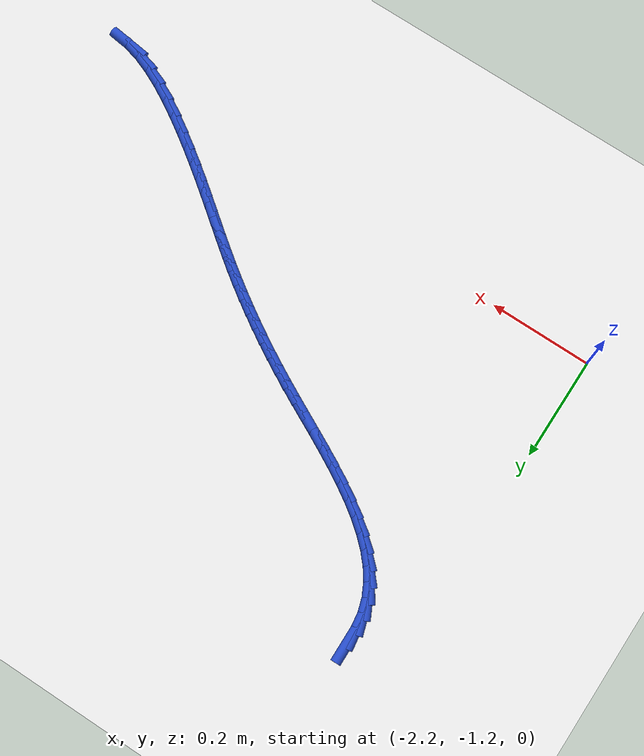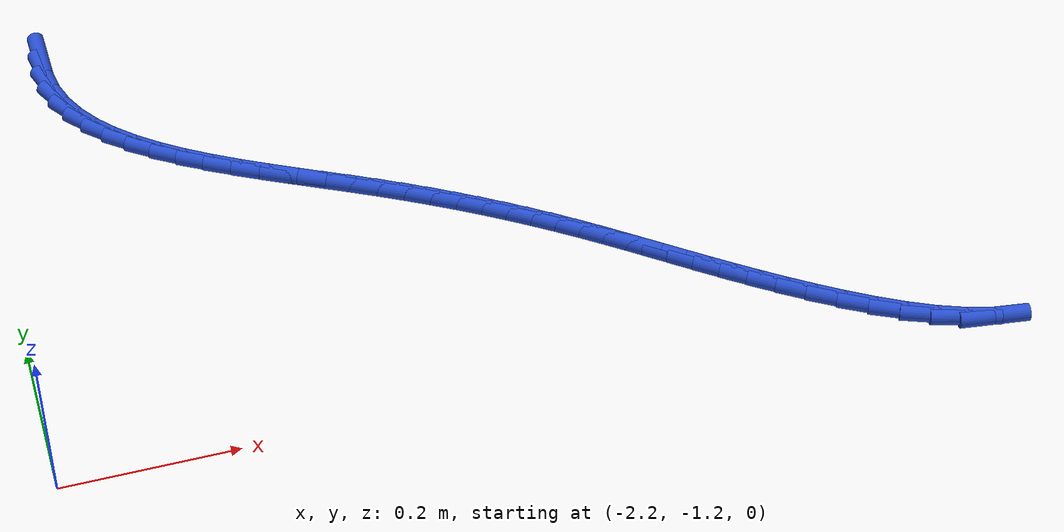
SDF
<sdf version="1.6">
 <world name="default">
  <model name="ground_plane">
   <static>1</static>
   <link name="link">
    <collision name="collision">
     <geometry><plane><normal>0 0 1</normal><size>100 100</size></plane></geometry>
     <surface><friction><ode><mu>100</mu><mu2>50</mu2></ode></friction></surface>
    </collision>
    <visual name="visual">
     <cast_shadows>0</cast_shadows>
     <geometry><plane><normal>0 0 1</normal><size>100 100</size></plane></geometry>
     <material>
      <script><uri>file://media/materials/scripts/gazebo.material</uri><name>Gazebo/WhiteGlow</name></script>
     </material>
    </visual>
   </link>
  </model>
  <model name="line">
   <link name="link_140">
    <pose>-2.1074348940771803 -0.5450724439887702 0.01 0 1.57 -1.5532509101586374</pose>
    <collision name="collision">
     <geometry><cylinder><radius>0.01</radius><length>0.08</length></cylinder></geometry>
    </collision>
    <visual name="visual">
     <material>
      <script><name>Gazebo/Blue</name><uri>file://media/materials/scripts/gazebo.material</uri></script>
     </material>
     <geometry><cylinder><radius>0.01</radius><length>0.08</length></cylinder></geometry>
    </visual>
   </link>
   <link name="link_141">
    <pose>-2.1069181425514247 -0.5745216448541178 0.01 0 1.57 -1.4238782737494495</pose>
    <collision name="collision">
     <geometry><cylinder><radius>0.01</radius><length>0.08</length></cylinder></geometry>
    </collision>
    <visual name="visual">
     <material>
      <script><name>Gazebo/Blue</name><uri>file://media/materials/scripts/gazebo.material</uri></script>
     </material>
     <geometry><cylinder><radius>0.01</radius><length>0.08</length></cylinder></geometry>
    </visual>
   </link>
   <link name="link_142">
    <pose>-2.102785044081856 -0.6024509427095531 0.01 0 1.57 -1.259832051912662</pose>
    <collision name="collision">
     <geometry><cylinder><radius>0.01</radius><length>0.08</length></cylinder></geometry>
    </collision>
    <visual name="visual">
     <material>
      <script><name>Gazebo/Blue</name><uri>file://media/materials/scripts/gazebo.material</uri></script>
     </material>
     <geometry><cylinder><radius>0.01</radius><length>0.08</length></cylinder></geometry>
    </visual>
   </link>
   <link name="link_143">
    <pose>-2.094364220245065 -0.6286521196379138 0.01 0 1.57 -1.103297798674207</pose>
    <collision name="collision">
     <geometry><cylinder><radius>0.01</radius><length>0.08</length></cylinder></geometry>
    </collision>
    <visual name="visual">
     <material>
      <script><name>Gazebo/Blue</name><uri>file://media/materials/scripts/gazebo.material</uri></script>
     </material>
     <geometry><cylinder><radius>0.01</radius><length>0.08</length></cylinder></geometry>
    </visual>
   </link>
   <link name="link_144">
    <pose>-2.0819575262915055 -0.6532284463057088 0.01 0 1.57 -0.964725636185373</pose>
    <collision name="collision">
     <geometry><cylinder><radius>0.01</radius><length>0.08</length></cylinder></geometry>
    </collision>
    <visual name="visual">
     <material>
      <script><name>Gazebo/Blue</name><uri>file://media/materials/scripts/gazebo.material</uri></script>
     </material>
     <geometry><cylinder><radius>0.01</radius><length>0.08</length></cylinder></geometry>
    </visual>
   </link>
   <link name="link_145">
    <pose>-2.0659583064239215 -0.6763124749024112 0.01 0 1.57 -0.8470432100341194</pose>
    <collision name="collision">
     <geometry><cylinder><radius>0.01</radius><length>0.08</length></cylinder></geometry>
    </collision>
    <visual name="visual">
     <material>
      <script><name>Gazebo/Blue</name><uri>file://media/materials/scripts/gazebo.material</uri></script>
     </material>
     <geometry><cylinder><radius>0.01</radius><length>0.08</length></cylinder></geometry>
    </visual>
   </link>
   <link name="link_146">
    <pose>-2.046759904845055 -0.6980367576174934 0.01 0 1.57 -0.7499517700583745</pose>
    <collision name="collision">
     <geometry><cylinder><radius>0.01</radius><length>0.08</length></cylinder></geometry>
    </collision>
    <visual name="visual">
     <material>
      <script><name>Gazebo/Blue</name><uri>file://media/materials/scripts/gazebo.material</uri></script>
     </material>
     <geometry><cylinder><radius>0.01</radius><length>0.08</length></cylinder></geometry>
    </visual>
   </link>
   <link name="link_147">
    <pose>-2.0247556657576493 -0.718533846640429 0.01 0 1.57 -0.6714624690479847</pose>
    <collision name="collision">
     <geometry><cylinder><radius>0.01</radius><length>0.08</length></cylinder></geometry>
    </collision>
    <visual name="visual">
     <material>
      <script><name>Gazebo/Blue</name><uri>file://media/materials/scripts/gazebo.material</uri></script>
     </material>
     <geometry><cylinder><radius>0.01</radius><length>0.08</length></cylinder></geometry>
    </visual>
   </link>
   <link name="link_148">
    <pose>-2.0003389333644486 -0.7379362941606892 0.01 0 1.57 -0.609080006576724</pose>
    <collision name="collision">
     <geometry><cylinder><radius>0.01</radius><length>0.08</length></cylinder></geometry>
    </collision>
    <visual name="visual">
     <material>
      <script><name>Gazebo/Blue</name><uri>file://media/materials/scripts/gazebo.material</uri></script>
     </material>
     <geometry><cylinder><radius>0.01</radius><length>0.08</length></cylinder></geometry>
    </visual>
   </link>
   <link name="link_149">
    <pose>-1.973903051868195 -0.7563766523677478 0.01 0 1.57 -0.5604490688874866</pose>
    <collision name="collision">
     <geometry><cylinder><radius>0.01</radius><length>0.08</length></cylinder></geometry>
    </collision>
    <visual name="visual">
     <material>
      <script><name>Gazebo/Blue</name><uri>file://media/materials/scripts/gazebo.material</uri></script>
     </material>
     <geometry><cylinder><radius>0.01</radius><length>0.08</length></cylinder></geometry>
    </visual>
   </link>
   <link name="link_150">
    <pose>-1.945841365471632 -0.7739874734510769 0.01 0 1.57 -0.5236205997835078</pose>
    <collision name="collision">
     <geometry><cylinder><radius>0.01</radius><length>0.08</length></cylinder></geometry>
    </collision>
    <visual name="visual">
     <material>
      <script><name>Gazebo/Blue</name><uri>file://media/materials/scripts/gazebo.material</uri></script>
     </material>
     <geometry><cylinder><radius>0.01</radius><length>0.08</length></cylinder></geometry>
    </visual>
   </link>
   <link name="link_151">
    <pose>-1.9165472183775023 -0.7909013096001498 0.01 0 1.57 -0.49712086884532536</pose>
    <collision name="collision">
     <geometry><cylinder><radius>0.01</radius><length>0.08</length></cylinder></geometry>
    </collision>
    <visual name="visual">
     <material>
      <script><name>Gazebo/Blue</name><uri>file://media/materials/scripts/gazebo.material</uri></script>
     </material>
     <geometry><cylinder><radius>0.01</radius><length>0.08</length></cylinder></geometry>
    </visual>
   </link>
   <link name="link_152">
    <pose>-1.8864139547885501 -0.8072507130044391 0.01 0 1.57 -0.479941984174117</pose>
    <collision name="collision">
     <geometry><cylinder><radius>0.01</radius><length>0.08</length></cylinder></geometry>
    </collision>
    <visual name="visual">
     <material>
      <script><name>Gazebo/Blue</name><uri>file://media/materials/scripts/gazebo.material</uri></script>
     </material>
     <geometry><cylinder><radius>0.01</radius><length>0.08</length></cylinder></geometry>
    </visual>
   </link>
   <link name="link_153">
    <pose>-1.8558349189075174 -0.8231682358534175 0.01 0 1.57 -0.4715157630233583</pose>
    <collision name="collision">
     <geometry><cylinder><radius>0.01</radius><length>0.08</length></cylinder></geometry>
    </collision>
    <visual name="visual">
     <material>
      <script><name>Gazebo/Blue</name><uri>file://media/materials/scripts/gazebo.material</uri></script>
     </material>
     <geometry><cylinder><radius>0.01</radius><length>0.08</length></cylinder></geometry>
    </visual>
   </link>
   <link name="link_154">
    <pose>-1.8252034549371479 -0.8387864303365576 0.01 0 1.57 -0.4717004207383549</pose>
    <collision name="collision">
     <geometry><cylinder><radius>0.01</radius><length>0.08</length></cylinder></geometry>
    </collision>
    <visual name="visual">
     <material>
      <script><name>Gazebo/Blue</name><uri>file://media/materials/scripts/gazebo.material</uri></script>
     </material>
     <geometry><cylinder><radius>0.01</radius><length>0.08</length></cylinder></geometry>
    </visual>
   </link>
   <link name="link_155">
    <pose>-1.7949129070801841 -0.8542378486433329 0.01 0 1.57 -0.4807715597166513</pose>
    <collision name="collision">
     <geometry><cylinder><radius>0.01</radius><length>0.08</length></cylinder></geometry>
    </collision>
    <visual name="visual">
     <material>
      <script><name>Gazebo/Blue</name><uri>file://media/materials/scripts/gazebo.material</uri></script>
     </material>
     <geometry><cylinder><radius>0.01</radius><length>0.08</length></cylinder></geometry>
    </visual>
   </link>
   <link name="link_156">
    <pose>-1.765355437157212 -0.8696547860827062 0.01 0 1.57 -0.4964863148940517</pose>
    <collision name="collision">
     <geometry><cylinder><radius>0.01</radius><length>0.08</length></cylinder></geometry>
    </collision>
    <visual name="visual">
     <material>
      <script><name>Gazebo/Blue</name><uri>file://media/materials/scripts/gazebo.material</uri></script>
     </material>
     <geometry><cylinder><radius>0.01</radius><length>0.08</length></cylinder></geometry>
    </visual>
   </link>
   <link name="link_157">
    <pose>-1.7367761421668086 -0.8851375871379181 0.01 0 1.57 -0.5134010865620007</pose>
    <collision name="collision">
     <geometry><cylinder><radius>0.01</radius><length>0.08</length></cylinder></geometry>
    </collision>
    <visual name="visual">
     <material>
      <script><name>Gazebo/Blue</name><uri>file://media/materials/scripts/gazebo.material</uri></script>
     </material>
     <geometry><cylinder><radius>0.01</radius><length>0.08</length></cylinder></geometry>
    </visual>
   </link>
   <link name="link_158">
    <pose>-1.7091323221411876 -0.9007240704577447 0.01 0 1.57 -0.5307581124777045</pose>
    <collision name="collision">
     <geometry><cylinder><radius>0.01</radius><length>0.08</length></cylinder></geometry>
    </collision>
    <visual name="visual">
     <material>
      <script><name>Gazebo/Blue</name><uri>file://media/materials/scripts/gazebo.material</uri></script>
     </material>
     <geometry><cylinder><radius>0.01</radius><length>0.08</length></cylinder></geometry>
    </visual>
   </link>
   <link name="link_159">
    <pose>-1.6823479054649184 -0.9164448044751501 0.01 0 1.57 -0.5484374203207221</pose>
    <collision name="collision">
     <geometry><cylinder><radius>0.01</radius><length>0.08</length></cylinder></geometry>
    </collision>
    <visual name="visual">
     <material>
      <script><name>Gazebo/Blue</name><uri>file://media/materials/scripts/gazebo.material</uri></script>
     </material>
     <geometry><cylinder><radius>0.01</radius><length>0.08</length></cylinder></geometry>
    </visual>
   </link>
   <link name="link_160">
    <pose>-1.656346820522572 -0.932330357623097 0.01 0 1.57 -0.5663033564630948</pose>
    <collision name="collision">
     <geometry><cylinder><radius>0.01</radius><length>0.08</length></cylinder></geometry>
    </collision>
    <visual name="visual">
     <material>
      <script><name>Gazebo/Blue</name><uri>file://media/materials/scripts/gazebo.material</uri></script>
     </material>
     <geometry><cylinder><radius>0.01</radius><length>0.08</length></cylinder></geometry>
    </visual>
   </link>
   <link name="link_161">
    <pose>-1.6310529956987192 -0.9484112983345504 0.01 0 1.57 -0.5842073491918391</pose>
    <collision name="collision">
     <geometry><cylinder><radius>0.01</radius><length>0.08</length></cylinder></geometry>
    </collision>
    <visual name="visual">
     <material>
      <script><name>Gazebo/Blue</name><uri>file://media/materials/scripts/gazebo.material</uri></script>
     </material>
     <geometry><cylinder><radius>0.01</radius><length>0.08</length></cylinder></geometry>
    </visual>
   </link>
   <link name="link_162">
    <pose>-1.6063903593779294 -0.9647181950424735 0.01 0 1.57 -0.6019915717822831</pose>
    <collision name="collision">
     <geometry><cylinder><radius>0.01</radius><length>0.08</length></cylinder></geometry>
    </collision>
    <visual name="visual">
     <material>
      <script><name>Gazebo/Blue</name><uri>file://media/materials/scripts/gazebo.material</uri></script>
     </material>
     <geometry><cylinder><radius>0.01</radius><length>0.08</length></cylinder></geometry>
    </visual>
   </link>
   <link name="link_163">
    <pose>-1.5822828399447755 -0.9812816161798296 0.01 0 1.57 -0.6194930979677357</pose>
    <collision name="collision">
     <geometry><cylinder><radius>0.01</radius><length>0.08</length></cylinder></geometry>
    </collision>
    <visual name="visual">
     <material>
      <script><name>Gazebo/Blue</name><uri>file://media/materials/scripts/gazebo.material</uri></script>
     </material>
     <geometry><cylinder><radius>0.01</radius><length>0.08</length></cylinder></geometry>
    </visual>
   </link>
   <link name="link_164">
    <pose>-1.5586543577296126 -0.9981321272243233 0.01 0 1.57 -0.6357062445238254</pose>
    <collision name="collision">
     <geometry><cylinder><radius>0.01</radius><length>0.08</length></cylinder></geometry>
    </collision>
    <visual name="visual">
     <material>
      <script><name>Gazebo/Blue</name><uri>file://media/materials/scripts/gazebo.material</uri></script>
     </material>
     <geometry><cylinder><radius>0.01</radius><length>0.08</length></cylinder></geometry>
    </visual>
   </link>
   <link name="link_165">
    <pose>-1.5354014445267516 -1.0152902442266158 0.01 0 1.57 -0.6476962502513802</pose>
    <collision name="collision">
     <geometry><cylinder><radius>0.01</radius><length>0.08</length></cylinder></geometry>
    </collision>
    <visual name="visual">
     <material>
      <script><name>Gazebo/Blue</name><uri>file://media/materials/scripts/gazebo.material</uri></script>
     </material>
     <geometry><cylinder><radius>0.01</radius><length>0.08</length></cylinder></geometry>
    </visual>
   </link>
   <link name="link_166">
    <pose>-1.512332054870588 -1.0327439823870252 0.01 0 1.57 -0.6547381579460821</pose>
    <collision name="collision">
     <geometry><cylinder><radius>0.01</radius><length>0.08</length></cylinder></geometry>
    </collision>
    <visual name="visual">
     <material>
      <script><name>Gazebo/Blue</name><uri>file://media/materials/scripts/gazebo.material</uri></script>
     </material>
     <geometry><cylinder><radius>0.01</radius><length>0.08</length></cylinder></geometry>
    </visual>
   </link>
   <link name="link_167">
    <pose>-1.4892362695076515 -1.050474798639051 0.01 0 1.57 -0.6568143163175578</pose>
    <collision name="collision">
     <geometry><cylinder><radius>0.01</radius><length>0.08</length></cylinder></geometry>
    </collision>
    <visual name="visual">
     <material>
      <script><name>Gazebo/Blue</name><uri>file://media/materials/scripts/gazebo.material</uri></script>
     </material>
     <geometry><cylinder><radius>0.01</radius><length>0.08</length></cylinder></geometry>
    </visual>
   </link>
   <link name="link_168">
    <pose>-1.465904169184473 -1.068464149916194 0.01 0 1.57 -0.6540638326567486</pose>
    <collision name="collision">
     <geometry><cylinder><radius>0.01</radius><length>0.08</length></cylinder></geometry>
    </collision>
    <visual name="visual">
     <material>
      <script><name>Gazebo/Blue</name><uri>file://media/materials/scripts/gazebo.material</uri></script>
     </material>
     <geometry><cylinder><radius>0.01</radius><length>0.08</length></cylinder></geometry>
    </visual>
   </link>
   <link name="link_169">
    <pose>-1.442125834647583 -1.0866934931519545 0.01 0 1.57 -0.6467652126059992</pose>
    <collision name="collision">
     <geometry><cylinder><radius>0.01</radius><length>0.08</length></cylinder></geometry>
    </collision>
    <visual name="visual">
     <material>
      <script><name>Gazebo/Blue</name><uri>file://media/materials/scripts/gazebo.material</uri></script>
     </material>
     <geometry><cylinder><radius>0.01</radius><length>0.08</length></cylinder></geometry>
    </visual>
   </link>
   <link name="link_170">
    <pose>-1.4176913466435113 -1.1051442852798334 0.01 0 1.57 -0.6353130566236722</pose>
    <collision name="collision">
     <geometry><cylinder><radius>0.01</radius><length>0.08</length></cylinder></geometry>
    </collision>
    <visual name="visual">
     <material>
      <script><name>Gazebo/Blue</name><uri>file://media/materials/scripts/gazebo.material</uri></script>
     </material>
     <geometry><cylinder><radius>0.01</radius><length>0.08</length></cylinder></geometry>
    </visual>
   </link>
   <link name="link_171">
    <pose>-1.39239078591879 -1.1237979832333305 0.01 0 1.57 -0.6201908885214429</pose>
    <collision name="collision">
     <geometry><cylinder><radius>0.01</radius><length>0.08</length></cylinder></geometry>
    </collision>
    <visual name="visual">
     <material>
      <script><name>Gazebo/Blue</name><uri>file://media/materials/scripts/gazebo.material</uri></script>
     </material>
     <geometry><cylinder><radius>0.01</radius><length>0.08</length></cylinder></geometry>
    </visual>
   </link>
   <link name="link_172">
    <pose>-1.3660142332199496 -1.1426360439459464 0.01 0 1.57 -0.6019420389555964</pose>
    <collision name="collision">
     <geometry><cylinder><radius>0.01</radius><length>0.08</length></cylinder></geometry>
    </collision>
    <visual name="visual">
     <material>
      <script><name>Gazebo/Blue</name><uri>file://media/materials/scripts/gazebo.material</uri></script>
     </material>
     <geometry><cylinder><radius>0.01</radius><length>0.08</length></cylinder></geometry>
    </visual>
   </link>
   <link name="link_173">
    <pose>-1.3383517692935203 -1.1616399243511812 0.01 0 1.57 -0.5801016236765156</pose>
    <collision name="collision">
     <geometry><cylinder><radius>0.01</radius><length>0.08</length></cylinder></geometry>
    </collision>
    <visual name="visual">
     <material>
      <script><name>Gazebo/Blue</name><uri>file://media/materials/scripts/gazebo.material</uri></script>
     </material>
     <geometry><cylinder><radius>0.01</radius><length>0.08</length></cylinder></geometry>
    </visual>
   </link>
   <link name="link_174">
    <pose>-1.3092701141633416 -1.180697531482388 0.01 0 1.57 -0.5491790305755802</pose>
    <collision name="collision">
     <geometry><cylinder><radius>0.01</radius><length>0.08</length></cylinder></geometry>
    </collision>
    <visual name="visual">
     <material>
      <script><name>Gazebo/Blue</name><uri>file://media/materials/scripts/gazebo.material</uri></script>
     </material>
     <geometry><cylinder><radius>0.01</radius><length>0.08</length></cylinder></geometry>
    </visual>
   </link>
   <link name="link_175">
    <pose>-1.2790498112297082 -1.1991916379704888 0.01 0 1.57 -0.5059893267735504</pose>
    <collision name="collision">
     <geometry><cylinder><radius>0.01</radius><length>0.08</length></cylinder></geometry>
    </collision>
    <visual name="visual">
     <material>
      <script><name>Gazebo/Blue</name><uri>file://media/materials/scripts/gazebo.material</uri></script>
     </material>
     <geometry><cylinder><radius>0.01</radius><length>0.08</length></cylinder></geometry>
    </visual>
   </link>
   <link name="link_176">
    <pose>-1.2481104483183174 -1.2163352915668233 0.01 0 1.57 -0.4478199410952039</pose>
    <collision name="collision">
     <geometry><cylinder><radius>0.01</radius><length>0.08</length></cylinder></geometry>
    </collision>
    <visual name="visual">
     <material>
      <script><name>Gazebo/Blue</name><uri>file://media/materials/scripts/gazebo.material</uri></script>
     </material>
     <geometry><cylinder><radius>0.01</radius><length>0.08</length></cylinder></geometry>
    </visual>
   </link>
   <link name="link_177">
    <pose>-1.2168717164521694 -1.2313414140547194 0.01 0 1.57 -0.37033036045361173</pose>
    <collision name="collision">
     <geometry><cylinder><radius>0.01</radius><length>0.08</length></cylinder></geometry>
    </collision>
    <visual name="visual">
     <material>
      <script><name>Gazebo/Blue</name><uri>file://media/materials/scripts/gazebo.material</uri></script>
     </material>
     <geometry><cylinder><radius>0.01</radius><length>0.08</length></cylinder></geometry>
    </visual>
   </link>
   <link name="link_178">
    <pose>-1.185753306654267 -1.243422927217504 0.01 0 1.57 -0.2671729828987463</pose>
    <collision name="collision">
     <geometry><cylinder><radius>0.01</radius><length>0.08</length></cylinder></geometry>
    </collision>
    <visual name="visual">
     <material>
      <script><name>Gazebo/Blue</name><uri>file://media/materials/scripts/gazebo.material</uri></script>
     </material>
     <geometry><cylinder><radius>0.01</radius><length>0.08</length></cylinder></geometry>
    </visual>
   </link>
   <link name="link_179">
    <pose>-1.1551749099476099 -1.2517927528385049 0.01 0 1.57 -0.12995988121402108</pose>
    <collision name="collision">
     <geometry><cylinder><radius>0.01</radius><length>0.08</length></cylinder></geometry>
    </collision>
    <visual name="visual">
     <material>
      <script><name>Gazebo/Blue</name><uri>file://media/materials/scripts/gazebo.material</uri></script>
     </material>
     <geometry><cylinder><radius>0.01</radius><length>0.08</length></cylinder></geometry>
    </visual>
   </link>
  </model>
 </world>
</sdf>
